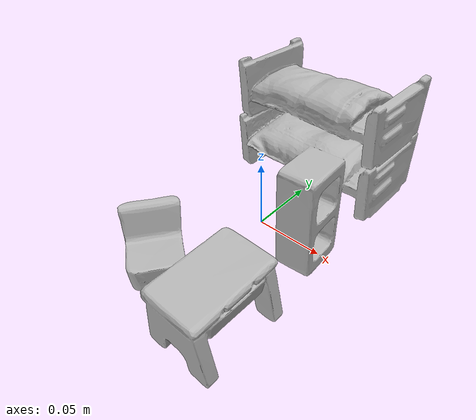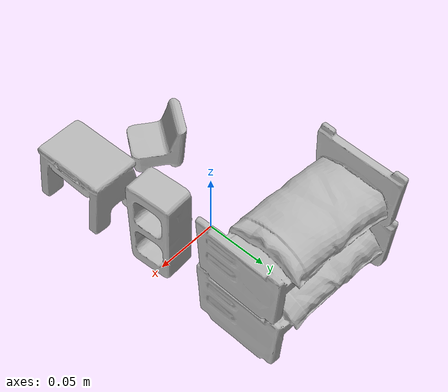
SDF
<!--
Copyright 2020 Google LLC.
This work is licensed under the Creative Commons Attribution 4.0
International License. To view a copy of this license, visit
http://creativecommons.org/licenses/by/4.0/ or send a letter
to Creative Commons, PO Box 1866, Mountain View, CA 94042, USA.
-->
<?xml version="1.0" ?>
<sdf version="1.6">
  <model name="KID_ROOM_FURNITURE_SET_1">
    <link name="link_0">
      <visual name="visual">
        <geometry>
          <mesh>
            <uri>meshes/model.obj</uri>
          </mesh>
        </geometry>
      </visual>
      <collision name="collision_0">
        <geometry>
          <mesh>
            <uri>meshes/model.obj</uri>
          </mesh>
        </geometry>
      </collision>
    </link>
  </model>
</sdf>
